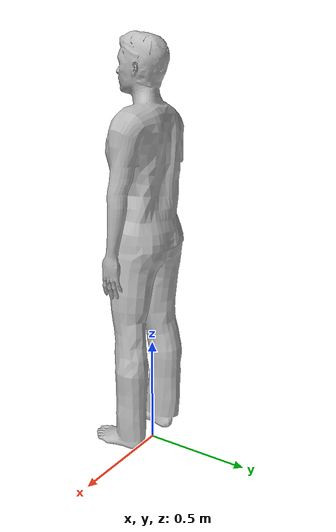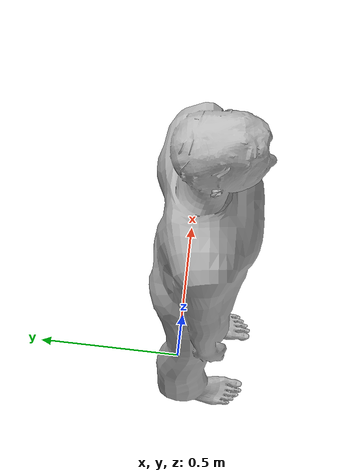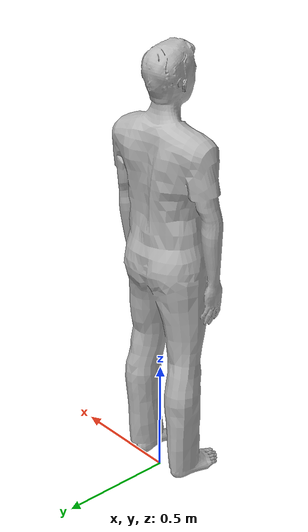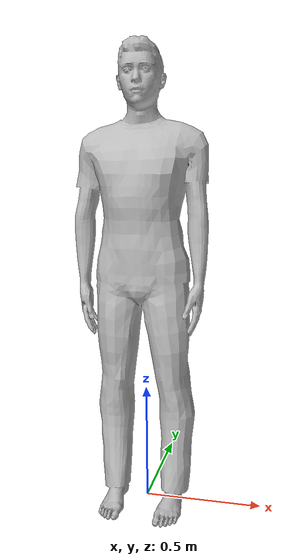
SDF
<?xml version="1.0" ?>
<sdf version="1.6">
  <model name="tb3_moving_obstacle_model">
    <static>false</static>
    <allow_auto_disable>false</allow_auto_disable>
    <link name="link">
      <pose>0 0 0 0 0 0</pose>
      <inertial>
        <mass>2.0</mass>
        <inertia>
          <ixx>0.0266667</ixx>
          <iyy>0.0266667</iyy>
          <izz>0.0266667</izz>
          <ixy>0.0</ixy>
          <ixz>0.0</ixz>
          <iyz>0.0</iyz>
        </inertia>
      </inertial>
      <collision name="collision">
        <geometry>
          <mesh>
            <uri>model://person_standing/meshes/standing.dae</uri>
          </mesh>
        </geometry>
      </collision>
      <visual name="visual">
        <geometry>
          <mesh>
            <uri>model://person_standing/meshes/standing.dae</uri>
          </mesh>
        </geometry>
      </visual>
    </link>
  </model>
</sdf>
